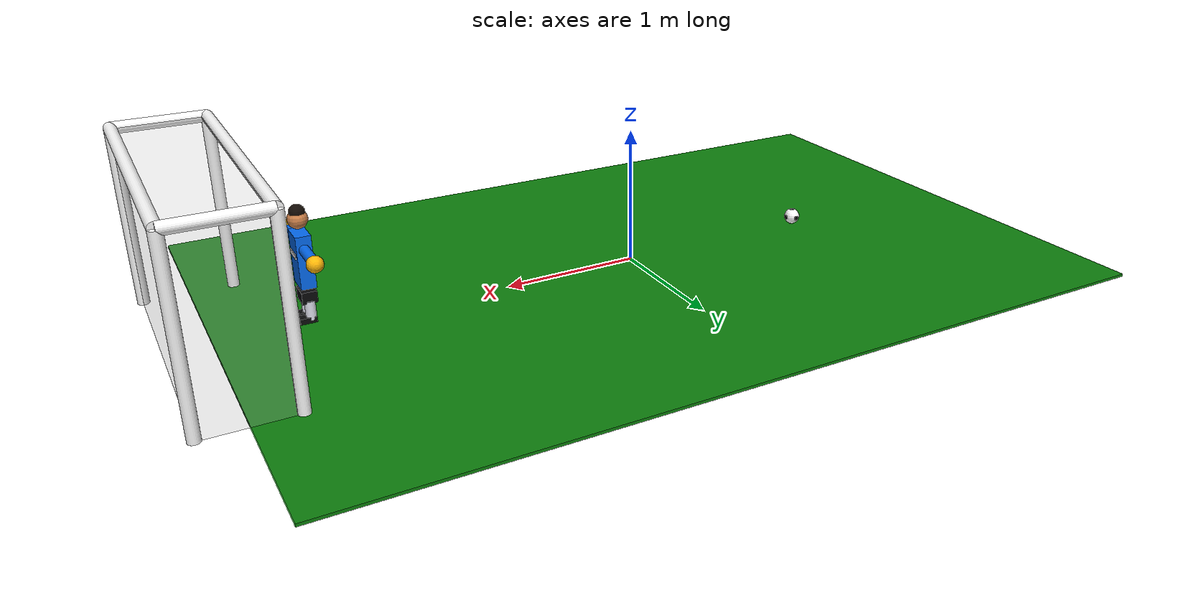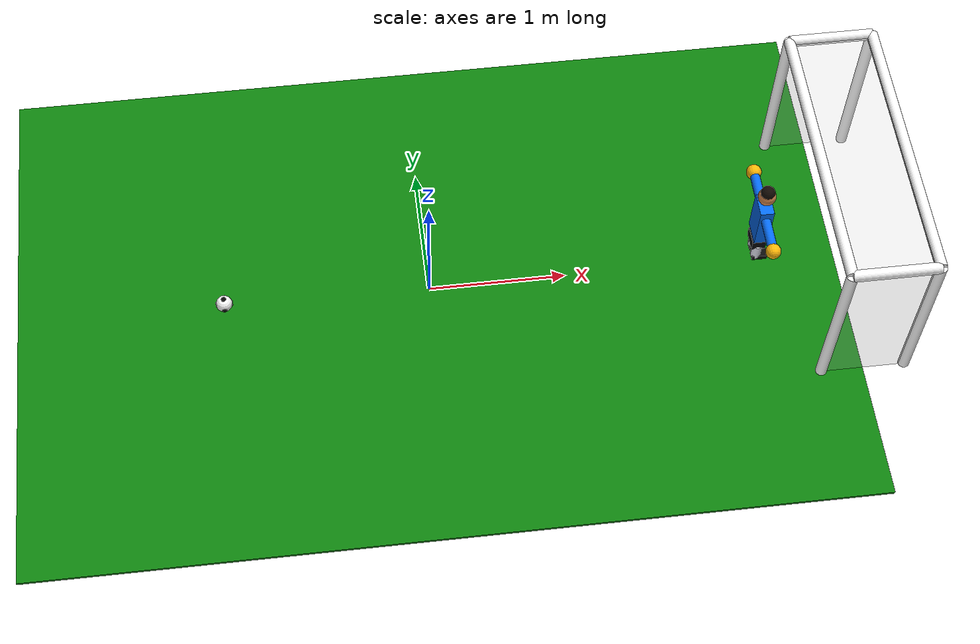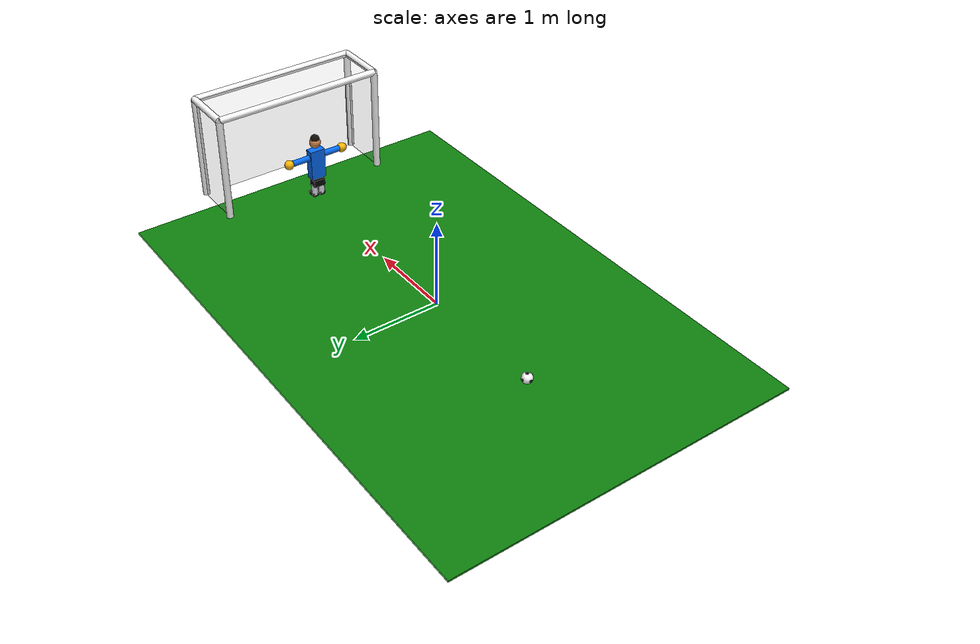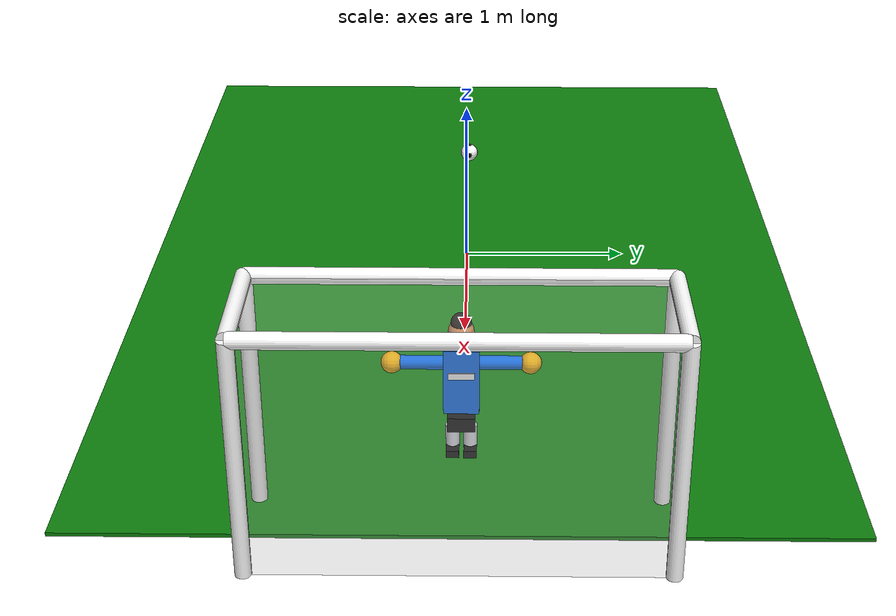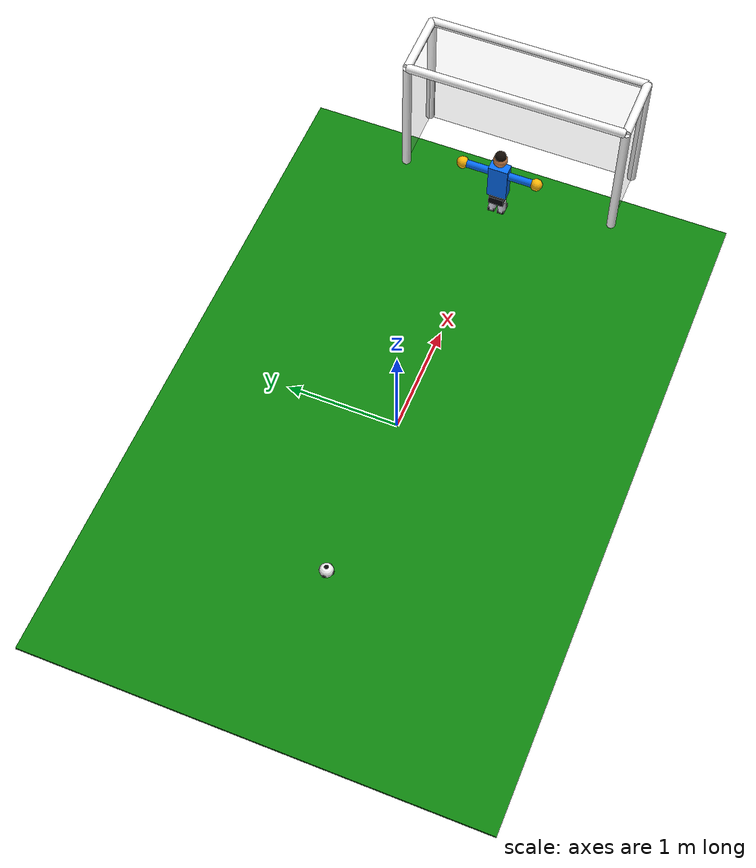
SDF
<?xml version="1.0"?>
<sdf version="1.6">
  <world name="default">
  <plugin
    filename="gz-sim-physics-system"
    name="gz::sim::systems::Physics">
  </plugin>
  <plugin
    filename="gz-sim-user-commands-system"
    name="gz::sim::systems::UserCommands">
  </plugin>
  <plugin
    filename="gz-sim-scene-broadcaster-system"
    name="gz::sim::systems::SceneBroadcaster">
  </plugin>
  <plugin
    filename="gz-sim-sensors-system"
    name="gz::sim::systems::Sensors">
    <render_engine>ogre2</render_engine>
  </plugin>
  <plugin
    filename="gz-sim-imu-system"
    name="gz::sim::systems::Imu">
  </plugin>
  <plugin filename="gz-sim-apply-link-wrench-system"
   name="gz::sim::systems::ApplyLinkWrench">
  </plugin>

    <include>
      <uri>https://fuel.gazebosim.org/1.0/OpenRobotics/models/Sun</uri>
    </include>

    <scene>
      <shadows>false</shadows>
    </scene>

    <gui fullscreen='0'>
      <camera name='user_camera'>
        <pose frame=''>0.319654 -0.235002 9.29441 0 1.5138 0.009599</pose>
        <view_controller>orbit</view_controller>
        <projection_type>perspective</projection_type>
      </camera>
    </gui>

    <physics type="ode">
      <real_time_update_rate>500.0</real_time_update_rate>
      <max_step_size>0.002</max_step_size>
      <real_time_factor>1</real_time_factor>
      <ode>
        <solver>
          <type>quick</type>
          <iters>50</iters>
          <precon_iters>0</precon_iters>
          <sor>1.400000</sor>
          <use_dynamic_moi_rescaling>1</use_dynamic_moi_rescaling>
        </solver>
        <constraints>
          <cfm>0.00001</cfm>
          <erp>0.2</erp>
          <contact_max_correcting_vel>2000.000000</contact_max_correcting_vel>
          <contact_surface_layer>0.01000</contact_surface_layer>
        </constraints>
      </ode>
    </physics>

     <model name="soccer_field">
        <static>true</static>
        <pose>0 0 -0.01 0 0 0</pose>
        <link name="field_link">
            <collision name="field_collision">
                <geometry>
                    <box>
                        <size>20 20 0.02</size>
                    </box>
                </geometry>
            </collision>
            <visual name="field_visual">
                <geometry>
                    <box>
                        <size>6 4 0.02</size>
                    </box>
                </geometry>
                <material>
                    <ambient>0.05 0.5 0.05 1</ambient>
                    <diffuse>0.05 0.5 0.05 1</diffuse>
                </material>
            </visual>
        </link>
     </model>

     <model name="soccer_goal">
  <static>true</static>

  <link name="goal_frame">
    <visual name="left_post">
      <pose>2.7 1.0 0.625 0 0 0</pose>
      <geometry>
        <cylinder>
          <radius>0.04</radius>
          <length>1.25</length>
        </cylinder>
      </geometry>
      <material>
        <ambient>1 1 1 1</ambient>
        <diffuse>1 1 1 1</diffuse>
      </material>
    </visual>

    <visual name="right_post">
      <pose>2.7 -1.0 0.625 0 0 0</pose>
      <geometry>
        <cylinder>
          <radius>0.04</radius>
          <length>1.25</length>
        </cylinder>
      </geometry>
      <material>
        <ambient>1 1 1 1</ambient>
        <diffuse>1 1 1 1</diffuse>
      </material>
    </visual>

    <visual name="crossbar">
      <pose>2.7 0 1.25 1.5708 0 0</pose>
      <geometry>
        <cylinder>
          <radius>0.04</radius>
          <length>2.0</length>
        </cylinder>
      </geometry>
      <material>
        <ambient>1 1 1 1</ambient>
        <diffuse>1 1 1 1</diffuse>
      </material>
    </visual>
    <!-- Rear vertical posts -->
    <visual name="rear_left_post">
    <pose>3.3 1.0 0.625 0 0 0</pose>
    <geometry>
        <cylinder>
        <radius>0.04</radius>
        <length>1.25</length>
        </cylinder>
    </geometry>
    <material>
        <ambient>1 1 1 1</ambient>
        <diffuse>1 1 1 1</diffuse>
    </material>
    </visual>

    <visual name="rear_right_post">
    <pose>3.3 -1.0 0.625 0 0 0</pose>
    <geometry>
        <cylinder>
        <radius>0.04</radius>
        <length>1.25</length>
        </cylinder>
    </geometry>
    <material>
        <ambient>1 1 1 1</ambient>
        <diffuse>1 1 1 1</diffuse>
    </material>
    </visual>

    <!-- Top rails connecting front and rear -->
    <visual name="left_top_rail">
    <pose>3.0 1.0 1.25 0 1.5708 0</pose>
    <geometry>
        <cylinder>
        <radius>0.04</radius>
        <length>0.6</length>
        </cylinder>
    </geometry>
    <material>
        <ambient>1 1 1 1</ambient>
        <diffuse>1 1 1 1</diffuse>
    </material>
    </visual>

    <visual name="right_top_rail">
    <pose>3.0 -1.0 1.25 0 1.5708 0</pose>
    <geometry>
        <cylinder>
        <radius>0.04</radius>
        <length>0.6</length>
        </cylinder>
    </geometry>
    <material>
        <ambient>1 1 1 1</ambient>
        <diffuse>1 1 1 1</diffuse>
    </material>
    </visual>

    <!-- Rear crossbar -->
    <visual name="rear_crossbar">
    <pose>3.3 0 1.25 1.5708 0 0</pose>
    <geometry>
        <cylinder>
        <radius>0.04</radius>
        <length>2.0</length>
        </cylinder>
    </geometry>
    <material>
        <ambient>1 1 1 1</ambient>
        <diffuse>1 1 1 1</diffuse>
    </material>
    </visual>
    <!-- Back net -->
<visual name="back_net">
  <pose>3.3 0 0.625 0 0 0</pose>
  <geometry>
    <box>
      <size>0.01 2.0 1.25</size>
    </box>
  </geometry>
  <material>
    <ambient>0.8 0.8 0.8 0.25</ambient>
    <diffuse>0.8 0.8 0.8 0.25</diffuse>
  </material>
  <transparency>0.7</transparency>
</visual>

<collision name="back_net_collision">
  <pose>3.3 0 0.625 0 0 0</pose>
  <geometry>
    <box>
      <size>0.04 2.0 1.25</size>
    </box>
  </geometry>
</collision>

<!-- Side nets -->
<visual name="left_net">
  <pose>3.0 1.0 0.625 0 0 0</pose>
  <geometry>
    <box>
      <size>0.6 0.01 1.25</size>
    </box>
  </geometry>
  <material>
    <ambient>0.8 0.8 0.8 0.25</ambient>
    <diffuse>0.8 0.8 0.8 0.25</diffuse>
  </material>
  <transparency>0.7</transparency>
</visual>

<collision name="left_net_collision">
  <pose>3.0 1.0 0.625 0 0 0</pose>
  <geometry>
    <box>
      <size>0.6 0.04 1.25</size>
    </box>
  </geometry>
</collision>

<visual name="right_net">
  <pose>3.0 -1.0 0.625 0 0 0</pose>
  <geometry>
    <box>
      <size>0.6 0.01 1.25</size>
    </box>
  </geometry>
  <material>
    <ambient>0.8 0.8 0.8 0.25</ambient>
    <diffuse>0.8 0.8 0.8 0.25</diffuse>
  </material>
  <transparency>0.7</transparency>
</visual>

<collision name="right_net_collision">
  <pose>3.0 -1.0 0.625 0 0 0</pose>
  <geometry>
    <box>
      <size>0.6 0.04 1.25</size>
    </box>
  </geometry>
</collision>

<!-- Roof net -->
<visual name="top_net">
  <pose>3.0 0 1.25 0 0 0</pose>
  <geometry>
    <box>
      <size>0.6 2.0 0.01</size>
    </box>
  </geometry>
  <material>
    <ambient>0.8 0.8 0.8 0.25</ambient>
    <diffuse>0.8 0.8 0.8 0.25</diffuse>
  </material>
  <transparency>0.7</transparency>
</visual>

<collision name="top_net_collision">
  <pose>3.0 0 1.25 0 0 0</pose>
  <geometry>
    <box>
      <size>0.6 2.0 0.04</size>
    </box>
  </geometry>
</collision>

  </link>
</model>

  <include>
    <uri>model://goalkeeper</uri>
    <name>burger</name>
    <pose>2.4 0 0.05 0 0 1.5708</pose>
  </include>

    <model name="soccer_ball">
  <pose>-1.5 0 0.065 0 0 0</pose>

  <link name="ball_link">
    <inertial>
      <mass>0.43</mass>
      <inertia>
        <ixx>0.0006192</ixx>
        <iyy>0.0006192</iyy>
        <izz>0.0006192</izz>
      </inertia>
    </inertial>

    <collision name="ball_collision">
      <geometry>
        <sphere>
          <radius>0.06</radius>
        </sphere>
      </geometry>

      <surface>
        <friction>
          <ode>
            <mu>0.6</mu>
            <mu2>0.6</mu2>
          </ode>
        </friction>

        <bounce>
          <restitution_coefficient>0.5</restitution_coefficient>
          <threshold>0.1</threshold>
        </bounce>
      </surface>
    </collision>

    <visual name="ball_visual">
      <geometry>
        <sphere>
          <radius>0.06</radius>
        </sphere>
      </geometry>

      <material>
        <ambient>0.9 0.9 0.9 1</ambient>
        <diffuse>1 1 1 1</diffuse>
      </material>
    </visual>

    <visual name="top_panel">
      <pose>0 0 0.059 0 0 0</pose>
      <geometry>
        <cylinder><radius>0.018</radius><length>0.004</length></cylinder>
      </geometry>
      <material>
        <ambient>0.01 0.01 0.01 1</ambient>
        <diffuse>0.02 0.02 0.02 1</diffuse>
      </material>
    </visual>

    <visual name="bottom_panel">
      <pose>0 0 -0.059 0 0 0</pose>
      <geometry>
        <cylinder><radius>0.018</radius><length>0.004</length></cylinder>
      </geometry>
      <material>
        <ambient>0.01 0.01 0.01 1</ambient>
        <diffuse>0.02 0.02 0.02 1</diffuse>
      </material>
    </visual>

    <visual name="front_panel">
      <pose>0.059 0 0 0 1.5708 0</pose>
      <geometry>
        <cylinder><radius>0.018</radius><length>0.004</length></cylinder>
      </geometry>
      <material>
        <ambient>0.01 0.01 0.01 1</ambient>
        <diffuse>0.02 0.02 0.02 1</diffuse>
      </material>
    </visual>

    <visual name="back_panel">
      <pose>-0.059 0 0 0 1.5708 0</pose>
      <geometry>
        <cylinder><radius>0.018</radius><length>0.004</length></cylinder>
      </geometry>
      <material>
        <ambient>0.01 0.01 0.01 1</ambient>
        <diffuse>0.02 0.02 0.02 1</diffuse>
      </material>
    </visual>

    <visual name="left_panel">
      <pose>0 0.059 0 1.5708 0 0</pose>
      <geometry>
        <cylinder><radius>0.018</radius><length>0.004</length></cylinder>
      </geometry>
      <material>
        <ambient>0.01 0.01 0.01 1</ambient>
        <diffuse>0.02 0.02 0.02 1</diffuse>
      </material>
    </visual>

    <visual name="right_panel">
      <pose>0 -0.059 0 1.5708 0 0</pose>
      <geometry>
        <cylinder><radius>0.018</radius><length>0.004</length></cylinder>
      </geometry>
      <material>
        <ambient>0.01 0.01 0.01 1</ambient>
        <diffuse>0.02 0.02 0.02 1</diffuse>
      </material>
    </visual>
  </link>
  <plugin filename="gz-sim-pose-publisher-system"
   name="gz::sim::systems::PosePublisher">
    <publish_model_pose>true</publish_model_pose>
    <publish_link_pose>false</publish_link_pose>
    <use_pose_vector_msg>true</use_pose_vector_msg>
  </plugin>
</model>

<model name="overhead_camera">
  <static>true</static>
  <pose>0 0 6 0 1.5708 0</pose>

  <link name="camera_link">
    <sensor name="field_camera" type="camera">
      <always_on>true</always_on>
      <update_rate>30</update_rate>
      <topic>field_camera/image</topic>

      <camera>
        <horizontal_fov>1.2</horizontal_fov>
        <image>
          <width>640</width>
          <height>480</height>
          <format>R8G8B8</format>
        </image>
        <clip>
          <near>0.1</near>
          <far>20.0</far>
        </clip>
      </camera>
    </sensor>
  </link>
</model>

<model name="side_camera">
  <static>true</static>
  <pose>-5 0 1.5 0 0 0</pose>

  <link name="camera_link">
    <sensor name="side_camera" type="camera">
      <always_on>true</always_on>
      <update_rate>30</update_rate>
      <topic>side_camera/image</topic>

      <camera>
        <horizontal_fov>1.2</horizontal_fov>
        <image>
          <width>640</width>
          <height>480</height>
          <format>R8G8B8</format>
        </image>
        <clip>
          <near>0.1</near>
          <far>20.0</far>
        </clip>
      </camera>
    </sensor>
  </link>
</model>

<model name="goal_line_camera">
  <static>true</static>
  <!--
    The optical axis lies in the x=2.7 goal-line plane and points across the
    mouth of the goal. The goal line therefore appears at the image center.
  -->
  <pose>2.7 -3.0 0.65 0 0 1.5708</pose>

  <link name="camera_link">
    <sensor name="goal_line_camera" type="camera">
      <always_on>true</always_on>
      <update_rate>30</update_rate>
      <topic>goal_line_camera/image</topic>

      <camera>
        <horizontal_fov>1.0</horizontal_fov>
        <image>
          <width>640</width>
          <height>480</height>
          <format>R8G8B8</format>
        </image>
        <clip>
          <near>0.1</near>
          <far>10.0</far>
        </clip>
      </camera>
    </sensor>
  </link>
</model>

  </world>
</sdf>

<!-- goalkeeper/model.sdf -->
<sdf version="1.8">
  <model name="turtlebot3_burger">
    <pose>0.0 0.0 0.0 0.0 0.0 0.0</pose>

    <link name="base_footprint"/>

    <link name="base_link">

      <inertial>
        <pose>-0.064 0 0.070 0 0 0</pose>
        <inertia>
          <ixx>1.9527e-02</ixx>
          <ixy>0</ixy>
          <ixz>0</ixz>
          <iyy>1.9527e-02</iyy>
          <iyz>0</iyz>
          <izz>1.9527e-02</izz>
        </inertia>
        <mass>8.2573504e-01</mass>
      </inertial>

      <collision name="base_collision">
        <pose>-0.032 0 0.070 0 0 0</pose>
        <geometry>
          <box>
            <size>0.14 0.14 0.14</size>
          </box>
        </geometry>
      </collision>

      <collision name="goalkeeper_save_collision">
        <pose>0 0 0.46 0 0 0</pose>
        <geometry>
          <box>
            <size>0.34 0.10 0.82</size>
          </box>
        </geometry>
        <surface>
          <friction>
            <ode>
              <mu>1.0</mu>
              <mu2>1.0</mu2>
            </ode>
          </friction>
          <bounce>
            <restitution_coefficient>0.25</restitution_coefficient>
            <threshold>0.1</threshold>
          </bounce>
        </surface>
      </collision>

      <visual name="goalkeeper_shorts">
        <pose>0 0 0.22 0 0 0</pose>
        <geometry>
          <box>
            <size>0.14 0.10 0.08</size>
          </box>
        </geometry>
        <material>
          <ambient>0.03 0.03 0.04 1</ambient>
          <diffuse>0.03 0.03 0.04 1</diffuse>
        </material>
      </visual>

      <visual name="goalkeeper_jersey">
        <pose>0 0 0.47 0 0 0</pose>
        <geometry>
          <box>
            <size>0.18 0.10 0.36</size>
          </box>
        </geometry>
        <material>
          <ambient>0.02 0.28 0.75 1</ambient>
          <diffuse>0.02 0.42 0.95 1</diffuse>
        </material>
      </visual>

      <visual name="goalkeeper_chest_stripe">
        <pose>0 -0.052 0.51 0 0 0</pose>
        <geometry>
          <box>
            <size>0.13 0.008 0.035</size>
          </box>
        </geometry>
        <material>
          <ambient>0.9 0.9 0.9 1</ambient>
          <diffuse>1 1 1 1</diffuse>
        </material>
      </visual>

      <visual name="goalkeeper_head">
        <pose>0 0 0.74 0 0 0</pose>
        <geometry>
          <sphere>
            <radius>0.065</radius>
          </sphere>
        </geometry>
        <material>
          <ambient>0.55 0.30 0.16 1</ambient>
          <diffuse>0.82 0.52 0.30 1</diffuse>
        </material>
      </visual>

      <visual name="goalkeeper_hair">
        <pose>0 0 0.785 0 0 0</pose>
        <geometry>
          <sphere>
            <radius>0.052</radius>
          </sphere>
        </geometry>
        <material>
          <ambient>0.04 0.025 0.015 1</ambient>
          <diffuse>0.07 0.04 0.02 1</diffuse>
        </material>
      </visual>

      <visual name="goalkeeper_left_leg">
        <pose>0.045 0 0.13 0 0 0</pose>
        <geometry>
          <cylinder>
            <radius>0.035</radius>
            <length>0.13</length>
          </cylinder>
        </geometry>
        <material>
          <ambient>0.68 0.68 0.72 1</ambient>
          <diffuse>0.9 0.9 0.95 1</diffuse>
        </material>
      </visual>

      <visual name="goalkeeper_right_leg">
        <pose>-0.045 0 0.13 0 0 0</pose>
        <geometry>
          <cylinder>
            <radius>0.035</radius>
            <length>0.13</length>
          </cylinder>
        </geometry>
        <material>
          <ambient>0.68 0.68 0.72 1</ambient>
          <diffuse>0.9 0.9 0.95 1</diffuse>
        </material>
      </visual>

      <visual name="goalkeeper_left_boot">
        <pose>0.045 -0.025 0.065 0 0 0</pose>
        <geometry>
          <box>
            <size>0.065 0.11 0.04</size>
          </box>
        </geometry>
        <material>
          <ambient>0.02 0.02 0.02 1</ambient>
          <diffuse>0.04 0.04 0.04 1</diffuse>
        </material>
      </visual>

      <visual name="goalkeeper_right_boot">
        <pose>-0.045 -0.025 0.065 0 0 0</pose>
        <geometry>
          <box>
            <size>0.065 0.11 0.04</size>
          </box>
        </geometry>
        <material>
          <ambient>0.02 0.02 0.02 1</ambient>
          <diffuse>0.04 0.04 0.04 1</diffuse>
        </material>
      </visual>
    </link>

    <link name="left_arm_link">
      <pose>0.20 0 0.56 0 1.5708 0</pose>
      <inertial>
        <mass>0.04</mass>
        <inertia>
          <ixx>0.00015</ixx>
          <iyy>0.00015</iyy>
          <izz>0.00005</izz>
        </inertia>
      </inertial>
      <collision name="left_arm_collision">
        <geometry>
          <cylinder>
            <radius>0.035</radius>
            <length>0.24</length>
          </cylinder>
        </geometry>
      </collision>
      <visual name="left_arm_visual">
        <geometry>
          <cylinder>
            <radius>0.035</radius>
            <length>0.24</length>
          </cylinder>
        </geometry>
        <material>
          <ambient>0.02 0.28 0.75 1</ambient>
          <diffuse>0.02 0.42 0.95 1</diffuse>
        </material>
      </visual>
      <collision name="left_glove_collision">
        <pose>0 0 0.145 0 0 0</pose>
        <geometry>
          <sphere><radius>0.055</radius></sphere>
        </geometry>
      </collision>
      <visual name="left_glove_visual">
        <pose>0 0 0.145 0 0 0</pose>
        <geometry>
          <sphere><radius>0.055</radius></sphere>
        </geometry>
        <material>
          <ambient>0.9 0.55 0.02 1</ambient>
          <diffuse>1 0.72 0.03 1</diffuse>
        </material>
      </visual>
    </link>

    <link name="right_arm_link">
      <pose>-0.20 0 0.56 0 -1.5708 0</pose>
      <inertial>
        <mass>0.04</mass>
        <inertia>
          <ixx>0.00015</ixx>
          <iyy>0.00015</iyy>
          <izz>0.00005</izz>
        </inertia>
      </inertial>
      <collision name="right_arm_collision">
        <geometry>
          <cylinder>
            <radius>0.035</radius>
            <length>0.24</length>
          </cylinder>
        </geometry>
      </collision>
      <visual name="right_arm_visual">
        <geometry>
          <cylinder>
            <radius>0.035</radius>
            <length>0.24</length>
          </cylinder>
        </geometry>
        <material>
          <ambient>0.02 0.28 0.75 1</ambient>
          <diffuse>0.02 0.42 0.95 1</diffuse>
        </material>
      </visual>
      <collision name="right_glove_collision">
        <pose>0 0 0.145 0 0 0</pose>
        <geometry>
          <sphere><radius>0.055</radius></sphere>
        </geometry>
      </collision>
      <visual name="right_glove_visual">
        <pose>0 0 0.145 0 0 0</pose>
        <geometry>
          <sphere><radius>0.055</radius></sphere>
        </geometry>
        <material>
          <ambient>0.9 0.55 0.02 1</ambient>
          <diffuse>1 0.72 0.03 1</diffuse>
        </material>
      </visual>
    </link>

    <link name="imu_link">
      <sensor name="tb3_imu" type="imu">
        <always_on>true</always_on>
        <update_rate>200</update_rate>
        <topic>imu</topic>
        <imu>
          <angular_velocity>
            <x>
              <noise type="gaussian">
                <mean>0.0</mean>
                <stddev>2e-4</stddev>
              </noise>
            </x>
            <y>
              <noise type="gaussian">
                <mean>0.0</mean>
                <stddev>2e-4</stddev>
              </noise>
            </y>
            <z>
              <noise type="gaussian">
                <mean>0.0</mean>
                <stddev>2e-4</stddev>
              </noise>
            </z>
          </angular_velocity>
          <linear_acceleration>
            <x>
              <noise type="gaussian">
                <mean>0.0</mean>
                <stddev>1.7e-2</stddev>
              </noise>
            </x>
            <y>
              <noise type="gaussian">
                <mean>0.0</mean>
                <stddev>1.7e-2</stddev>
              </noise>
            </y>
            <z>
              <noise type="gaussian">
                <mean>0.0</mean>
                <stddev>1.7e-2</stddev>
              </noise>
            </z>
          </linear_acceleration>
        </imu>
      </sensor>
    </link>

    <link name="base_scan">
      <inertial>
        <pose>-0.020 0 0.161 0 0 0</pose>
        <inertia>
          <ixx>0.0001</ixx>
          <ixy>0.000</ixy>
          <ixz>0.000</ixz>
          <iyy>0.0001</iyy>
          <iyz>0.000</iyz>
          <izz>0.0001</izz>
        </inertia>
        <mass>0.114</mass>
      </inertial>

      <collision name="lidar_sensor_collision">
        <pose>-0.020 0 0.161 0 0 0</pose>
        <geometry>
          <cylinder>
            <radius>0.0508</radius>
            <length>0.055</length>
          </cylinder>
        </geometry>
      </collision>

    </link>

    <link name="wheel_left_link">

      <inertial>
        <pose>0 0.08 0.023 -1.57 0 0</pose>
        <inertia>
          <ixx>5.445e-05</ixx>
          <ixy>0</ixy>
          <ixz>0</ixz>
          <iyy>5.445e-05</iyy>
          <iyz>0</iyz>
          <izz>1.089e-04</izz>
        </inertia>
        <mass>0.1</mass>
      </inertial>

      <collision name="wheel_left_collision">
        <pose>0 0.08 0.023 -1.57 0 0</pose>
        <geometry>
          <cylinder>
            <radius>0.033</radius>
            <length>0.018</length>
          </cylinder>
        </geometry>
        <surface>
          <!-- This friction pamareter don't contain reliable data!! -->
          <friction>
            <ode>
              <mu>100000.0</mu>
              <mu2>100000.0</mu2>
              <fdir1>0 0 0</fdir1>
              <slip1>0.0</slip1>
              <slip2>0.0</slip2>
            </ode>
          </friction>
          <contact>
            <ode>
              <soft_cfm>0</soft_cfm>
              <soft_erp>0.2</soft_erp>
              <kp>1e+5</kp>
              <kd>1</kd>
              <max_vel>0.01</max_vel>
              <min_depth>0.001</min_depth>
            </ode>
          </contact>
        </surface>
      </collision>

    </link>

    <link name="wheel_right_link">

      <inertial>
        <pose>0.0 -0.08 0.023 -1.57 0 0</pose>
        <inertia>
          <ixx>5.445e-05</ixx>
          <ixy>0</ixy>
          <ixz>0</ixz>
          <iyy>5.445e-05</iyy>
          <iyz>0</iyz>
          <izz>1.089e-04</izz>
        </inertia>
        <mass>0.1</mass>
      </inertial>

      <collision name="wheel_right_collision">
        <pose>0.0 -0.08 0.023 -1.57 0 0</pose>
        <geometry>
          <cylinder>
            <radius>0.033</radius>
            <length>0.018</length>
          </cylinder>
        </geometry>
        <surface>
          <!-- This friction pamareter don't contain reliable data!! -->
          <friction>
            <ode>
              <mu>100000.0</mu>
              <mu2>100000.0</mu2>
              <fdir1>0 0 0</fdir1>
              <slip1>0.0</slip1>
              <slip2>0.0</slip2>
            </ode>
          </friction>
          <contact>
            <ode>
              <soft_cfm>0</soft_cfm>
              <soft_erp>0.2</soft_erp>
              <kp>1e+5</kp>
              <kd>1</kd>
              <max_vel>0.01</max_vel>
              <min_depth>0.001</min_depth>
            </ode>
          </contact>
        </surface>
      </collision>

    </link>

    <link name='caster_back_link'>
      <pose>-0.081 0 -0.004 -1.57 0 0</pose>
      <inertial>
        <mass>0.005</mass>
        <inertia>
          <ixx>0.00001</ixx>
          <ixy>0.000</ixy>
          <ixz>0.000</ixz>
          <iyy>0.00001</iyy>
          <iyz>0.000</iyz>
          <izz>0.00001</izz>
        </inertia>
      </inertial>
      <collision name='collision'>
        <geometry>
          <sphere>
            <radius>0.005000</radius>
          </sphere>
        </geometry>
        <surface>
          <contact>
            <ode>
              <soft_cfm>0</soft_cfm>
              <soft_erp>0.2</soft_erp>
              <kp>1e+5</kp>
              <kd>1</kd>
              <max_vel>0.01</max_vel>
              <min_depth>0.001</min_depth>
            </ode>
          </contact>
        </surface>
      </collision>
    </link>

    <joint name="base_joint" type="fixed">
      <parent>base_footprint</parent>
      <child>base_link</child>
      <pose>0.0 0.0 0.010 0 0 0</pose>
    </joint>

    <joint name="left_shoulder_joint" type="revolute">
      <parent>base_link</parent>
      <child>left_arm_link</child>
      <pose>0.08 0 0.56 0 0 0</pose>
      <axis>
        <xyz>0 1 0</xyz>
        <limit>
          <lower>-1.45</lower>
          <upper>1.10</upper>
          <effort>15</effort>
          <velocity>8</velocity>
        </limit>
        <dynamics>
          <damping>0.3</damping>
        </dynamics>
      </axis>
    </joint>

    <joint name="right_shoulder_joint" type="revolute">
      <parent>base_link</parent>
      <child>right_arm_link</child>
      <pose>-0.08 0 0.56 0 0 0</pose>
      <axis>
        <xyz>0 1 0</xyz>
        <limit>
          <lower>-1.10</lower>
          <upper>1.45</upper>
          <effort>15</effort>
          <velocity>8</velocity>
        </limit>
        <dynamics>
          <damping>0.3</damping>
        </dynamics>
      </axis>
    </joint>

    <joint name="wheel_left_joint" type="revolute">
      <parent>base_link</parent>
      <child>wheel_left_link</child>
      <pose>0.0 0.08 0.023 -1.57 0 0</pose>
      <axis>
        <xyz>0 0 1</xyz>
        <limit>
          <effort>20</effort>
        </limit>
      </axis>
    </joint>

    <joint name="wheel_right_joint" type="revolute">
      <parent>base_link</parent>
      <child>wheel_right_link</child>
      <pose>0.0 -0.08 0.023 -1.57 0 0</pose>
      <axis>
        <xyz>0 0 1</xyz>
        <limit>
          <effort>20</effort>
        </limit>
      </axis>
    </joint>

    <joint name='caster_back_joint' type='ball'>
      <parent>base_link</parent>
      <child>caster_back_link</child>
    </joint>

    <joint name="imu_joint" type="fixed">
      <parent>base_link</parent>
      <child>imu_link</child>
      <pose>-0.032 0 0.068 0 0 0</pose>
      <axis>
        <xyz>0 0 1</xyz>
      </axis>
    </joint>

    <joint name="lidar_joint" type="fixed">
      <parent>base_link</parent>
      <child>base_scan</child>
      <pose>-0.032 0 0.171 0 0 0</pose>
      <axis>
        <xyz>0 0 1</xyz>
      </axis>
    </joint>

    <plugin filename="gz-sim-diff-drive-system" name="gz::sim::systems::DiffDrive">

      <!-- wheels -->
      <left_joint>wheel_left_joint</left_joint>
      <right_joint>wheel_right_joint</right_joint>

      <!-- kinematics -->
      <wheel_separation>0.160</wheel_separation>
      <wheel_radius>0.033</wheel_radius>

      <!-- limits -->
      <max_linear_velocity>3.5</max_linear_velocity>
      <max_linear_acceleration>16.0</max_linear_acceleration>
      <max_linear_deceleration>16.0</max_linear_deceleration>

      <topic>cmd_vel</topic>

      <odom_topic>odom</odom_topic>
      <frame_id>odom</frame_id>
      <child_frame_id>base_footprint</child_frame_id>
      <odom_publisher_frequency>30</odom_publisher_frequency>

      <tf_topic>/tf</tf_topic>

    </plugin>

    <plugin filename="gz-sim-joint-state-publisher-system" name="gz::sim::systems::JointStatePublisher">
      <topic>joint_states</topic>
      <joint_name>wheel_left_joint</joint_name>
      <joint_name>wheel_right_joint</joint_name>
      <joint_name>left_shoulder_joint</joint_name>
      <joint_name>right_shoulder_joint</joint_name>
    </plugin>

    <plugin
      filename="gz-sim-joint-position-controller-system"
      name="gz::sim::systems::JointPositionController">
      <joint_name>left_shoulder_joint</joint_name>
      <topic>/goalkeeper/left_arm_cmd</topic>
      <p_gain>12</p_gain>
      <i_gain>0.1</i_gain>
      <d_gain>0.8</d_gain>
      <cmd_max>15</cmd_max>
      <cmd_min>-15</cmd_min>
    </plugin>

    <plugin
      filename="gz-sim-joint-position-controller-system"
      name="gz::sim::systems::JointPositionController">
      <joint_name>right_shoulder_joint</joint_name>
      <topic>/goalkeeper/right_arm_cmd</topic>
      <p_gain>12</p_gain>
      <i_gain>0.1</i_gain>
      <d_gain>0.8</d_gain>
      <cmd_max>15</cmd_max>
      <cmd_min>-15</cmd_min>
    </plugin>

  </model>
</sdf>
